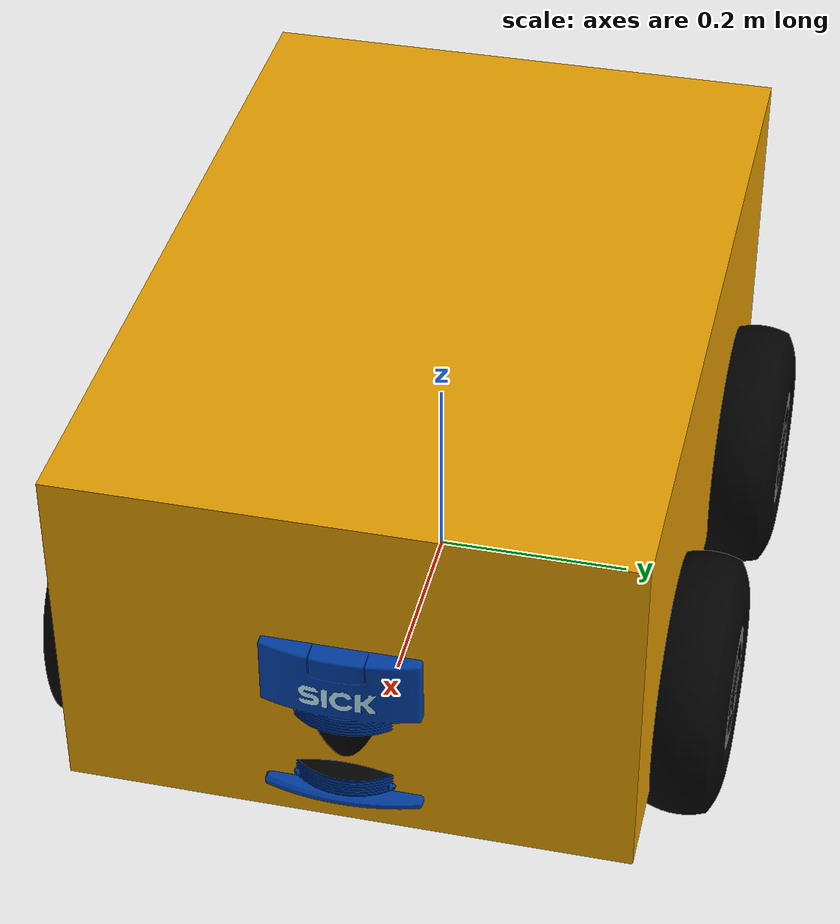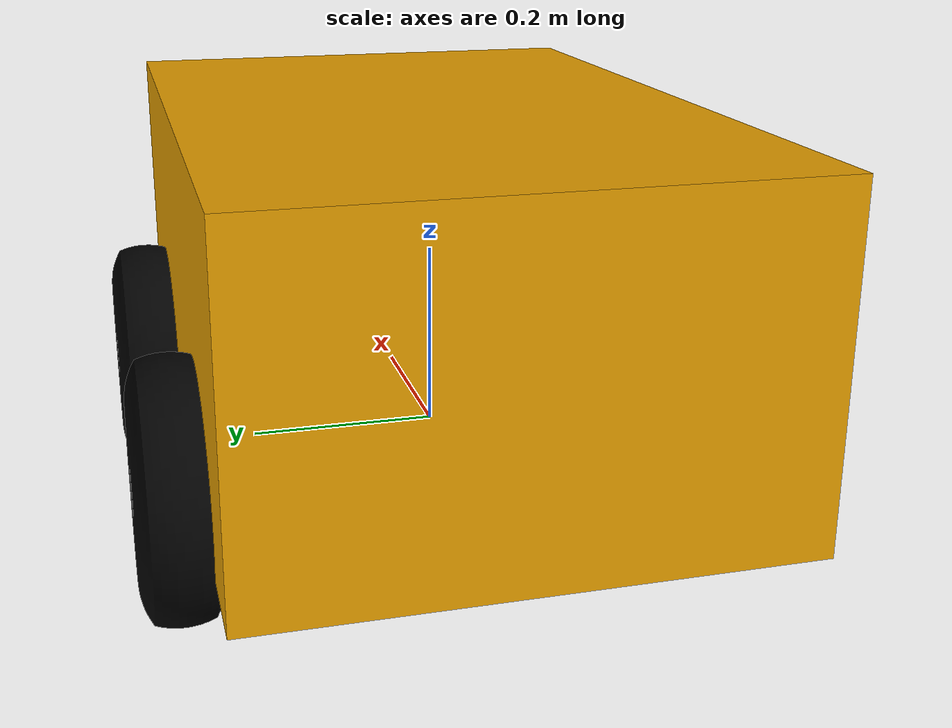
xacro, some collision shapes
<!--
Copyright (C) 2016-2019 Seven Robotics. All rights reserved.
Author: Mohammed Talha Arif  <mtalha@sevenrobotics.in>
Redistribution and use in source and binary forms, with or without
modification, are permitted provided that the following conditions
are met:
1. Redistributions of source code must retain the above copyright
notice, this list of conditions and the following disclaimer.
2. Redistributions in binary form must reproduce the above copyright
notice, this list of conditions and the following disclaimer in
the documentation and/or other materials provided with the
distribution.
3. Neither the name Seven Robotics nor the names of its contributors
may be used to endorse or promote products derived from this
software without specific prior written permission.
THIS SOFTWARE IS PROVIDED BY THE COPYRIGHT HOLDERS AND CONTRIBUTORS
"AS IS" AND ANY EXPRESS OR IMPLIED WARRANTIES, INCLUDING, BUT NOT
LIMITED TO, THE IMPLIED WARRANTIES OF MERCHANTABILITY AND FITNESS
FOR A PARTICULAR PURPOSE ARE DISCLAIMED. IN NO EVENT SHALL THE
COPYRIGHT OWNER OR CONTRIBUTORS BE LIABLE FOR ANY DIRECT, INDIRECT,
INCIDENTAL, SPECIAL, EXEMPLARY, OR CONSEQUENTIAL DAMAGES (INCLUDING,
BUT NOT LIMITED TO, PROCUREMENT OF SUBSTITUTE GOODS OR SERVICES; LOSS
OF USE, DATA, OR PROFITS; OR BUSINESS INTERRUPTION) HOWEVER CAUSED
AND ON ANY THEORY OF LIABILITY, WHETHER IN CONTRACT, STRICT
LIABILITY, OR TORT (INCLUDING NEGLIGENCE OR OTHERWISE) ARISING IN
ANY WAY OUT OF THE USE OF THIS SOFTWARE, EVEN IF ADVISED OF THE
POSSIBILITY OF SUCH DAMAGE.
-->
<?xml version="1.0"?>
<robot name="seven" xmlns:xacro="http://www.ros.org/wiki/xacro">

	<!--xacro:arg name="laser_enabled" default="false"/-->
	<xacro:arg name="laser_xyz" default="$(optenv SEVEN_LMS2XX_XYZ 0.2750 0.0 0.1267)"/>
	<xacro:arg name="laser_rpy" default="$(optenv SEVEN_LMS2XX_RPY 0.0 0.0 0.0)"/>

	<xacro:property name="PI" value="3.14159"/>
	<xacro:include filename="$(find seven_robot_description)/urdf/wheel.urdf.xacro"/>
	<xacro:include filename="$(find seven_robot_description)/urdf/sick.urdf.xacro"/>

	<xacro:arg name="robot_namespace" default="/" />

	<!--robot base dimensions: includes the top enclosure
			and flange bearing offsets-->
	<xacro:property name="base_size_x" value="0.820"/>
	<xacro:property name="base_size_y" value="0.550"/>
	<xacro:property name="base_size_z" value="0.358"/>

	<!--wheel mounting includes offsets induced by bearings-->
	<xacro:property name="wheel_base" value="0.387"/>
	<xacro:property name="track_length" value="0.5366"/>
	<xacro:property name="wheel_vertical_offset" value="0.03736"/>

	<xacro:property name="wheel_width" value="0.07"/>
	<xacro:property name="wheel_radius" value="0.08641"/>

	<link name="base_link">
		<visual>
			<origin rpy="0 0 ${PI}" xyz="0 0 0.05"/>
			<geometry>
				<mesh filename="package://seven_robot_description/meshes/robot_base.dae"/>
			</geometry>
		</visual>

		<collision>
		<origin xyz="0 0 ${base_size_z/2}" rpy="0 0 0"/>
		<geometry>
			<box size="${base_size_x} ${base_size_y} ${base_size_z}"/>
		</geometry>
		</collision>
	</link>

	<link name="base_footprint"/>

	<!--This is the footprint of our base which lies on the ground at all times-->
	<joint name="base_footprint_joint" type="fixed">
		<origin xyz="0 0 ${wheel_vertical_offset - wheel_radius}" rpy="0 0 0"/>
		<parent link="base_link"/>
		<child link="base_footprint"/>
	</joint>

	<link name="inertial_link">
		<inertial>
			<mass value="47.4"/>
			<origin xyz="-0.001443 -0.000133 0.1181" rpy="0 0 0"/>
			<inertia ixx="1.9397" ixy="-0.0051" ixz="0.0803" iyx="-0.0051" iyy="2.3585" iyz="0.0107" izx="0.0803" izy="0.0107" izz="2.2906"/>
		</inertial>
	</link>

	<joint name="inertial_joint" type="fixed">
		<origin xyz="0 0 0" rpy="0 0 0"/>
		<parent link="base_link"/>
		<child link="inertial_link"/>
	</joint>

	<link name="imu_link">
	</link>

	<joint name="base_imu_joint" type="fixed">
		<origin xyz="0 0 0.250" rpy="0 0 0"/>
		<parent link="base_link"/>
		<child link="imu_link"/>
	</joint>

	<link name="camera_link">
	</link>

	<joint name="base_camera_joint" type="fixed">
		<origin xyz="0.4335 0 0.272" rpy="0 0 0"/>
		<parent link="base_link"/>
		<child link="camera_link"/>
	</joint>

	<!--wheel macros-->
	<xacro:seven_wheel prefix="frontRight">
		<origin xyz="${wheel_base/2} -${track_length/2 + wheel_width} ${wheel_vertical_offset}" rpy="${PI/2} 0 0"/>
	</xacro:seven_wheel>
	<xacro:seven_wheel prefix="rearRight">
		<origin xyz="-${wheel_base/2} -${track_length/2 + wheel_width} ${wheel_vertical_offset}" rpy="${PI/2} 0 0"/>
	</xacro:seven_wheel>
	<xacro:seven_wheel prefix="frontLeft">
		<origin xyz="${wheel_base/2} ${track_length/2 + wheel_width} ${wheel_vertical_offset}" rpy="-${PI/2} 0 0"/>
	</xacro:seven_wheel>
	<xacro:seven_wheel prefix="rearLeft">
		<origin xyz="-${wheel_base/2} ${track_length/2 + wheel_width} ${wheel_vertical_offset}" rpy="-${PI/2} 0 0"/>
	</xacro:seven_wheel>

	<xacro:sick_mount prefix="base">
			<origin xyz="$(arg laser_xyz)" rpy="$(arg laser_rpy)"/>
	</xacro:sick_mount>

</robot>

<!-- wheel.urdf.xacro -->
<robot xmlns:xacro="http://www.ros.org/wiki/xacro" name="seven_wheel">

	<xacro:macro name="seven_wheel" params="*joint_pose prefix">
		<link name=" ${prefix}_link">
			<inertial>
				<mass value="1.900"/>
				<origin xyz="0 0 0"/>
				<inertia ixx="0.002559" ixy="0" ixz="0" iyx="0" iyy="0.002559" iyz="0" izx="0" izy="0" izz="0.002396"/>
			</inertial>

			<visual>
				<origin xyz="0 0 0" rpy="0 0 0"/>
				<geometry>
					<mesh filename="package://seven_robot_description/meshes/wheel.dae"/>
				</geometry>
			</visual>

			<collision>
				<origin xyz="0 0 0" rpy="${PI/2} 0 0"/>
				<geometry>
			 		<cylinder radius="${wheel_radius}" length="${wheel_width}"/>
				</geometry>
			</collision>
		</link>

		<joint name="${prefix}_joint" type="continuous">
			<parent link="base_link"/>
			<child link=" ${prefix}_link"/>
			<xacro:insert_block name="joint_pose"/>
			<axis xyz="0 0 1" rpy="0 0 0"/>
		</joint>

		<transmission name=" ${prefix}_wheeltrans" type="SimpleTransmission">
			<type>transmission_interface/SimpleTransmission</type>
			<actuator name=" ${prefix}_motor">
				<mechanicalReduction>2</mechanicalReduction>
			</actuator>
			<joint name="$${prefix}_joint">
				<hardwareInterface>hardware_interface/VelocityJointInterface</hardwareInterface>
			</joint>
		</transmission>

	</xacro:macro>
</robot>

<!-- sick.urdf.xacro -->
<robot name="sick_lms2xx" xmlns:xacro="http://www.ros.org/wiki/xacro">

	<xacro:macro name="sick_mount" params="prefix *joint_pose">
		<link name="${prefix}_sick_link">
			<inertial>
				<mass value="4.12"/>
				<origin xyz="0 0 0" rpy="0 0 0"/>
				<inertia ixx="0" ixy="0" ixz="0" iyy="0" iyz="0" izz="0"/>
			</inertial>
			<visual>
				<origin xyz="0 0 0" rpy="0 0 ${PI}"/>
				<geometry>
					<mesh filename="package://seven_robot_description/meshes/sick.dae"/>
				</geometry>
			</visual>
			<collision>
				<origin xyz="0 0 0" rpy="0 0 0"/>
				<geometry>
					<box size="0.155 0.156 .210"/>
				</geometry>
			</collision>
		</link>

		<joint name="${prefix}_sick_joint" type="fixed">
			<parent link="${prefix}_link"/>
			<child link="${prefix}_sick_link"/>
			<xacro:insert_block name="joint_pose"/>
		</joint>

		<link name="laser_head"/>
		<!--joint between the sensor body origin and laser head-->
		<joint name="laser_head_joint" type="fixed">
			<origin xyz="0.0930 0 -0.0295" rpy="0 0 0"/>
			<parent link="${prefix}_sick_link"/>
			<child link="laser_head"/>
		</joint>
	</xacro:macro>

</robot>
